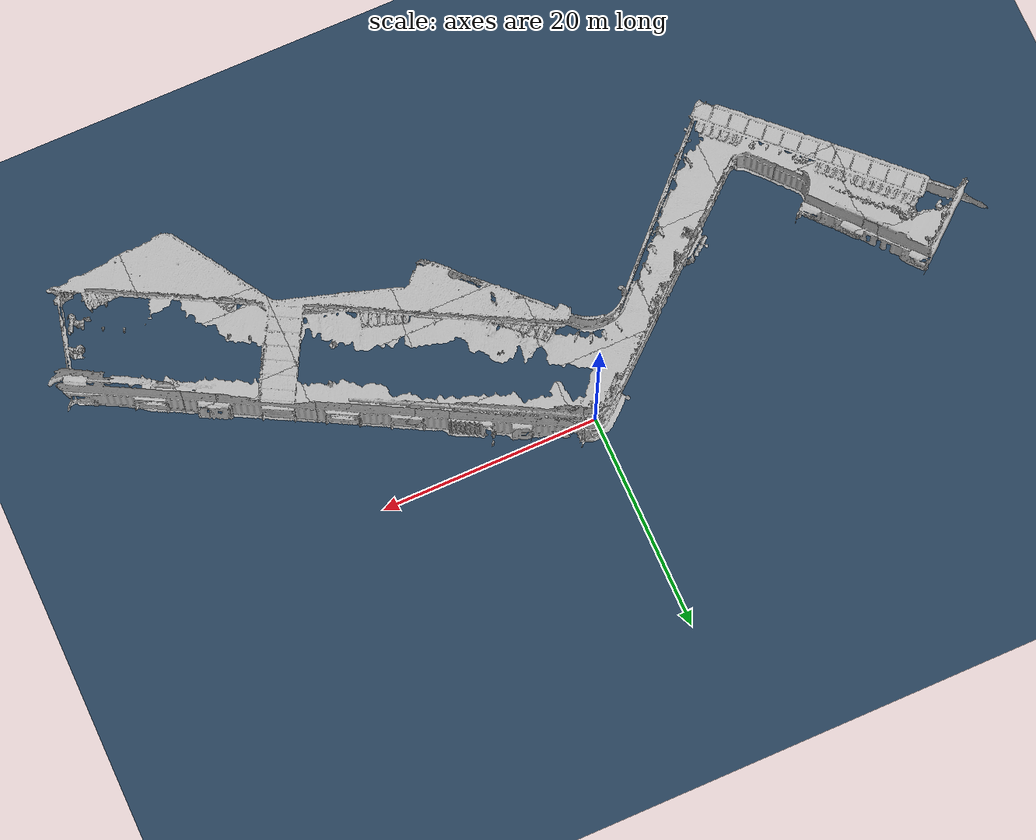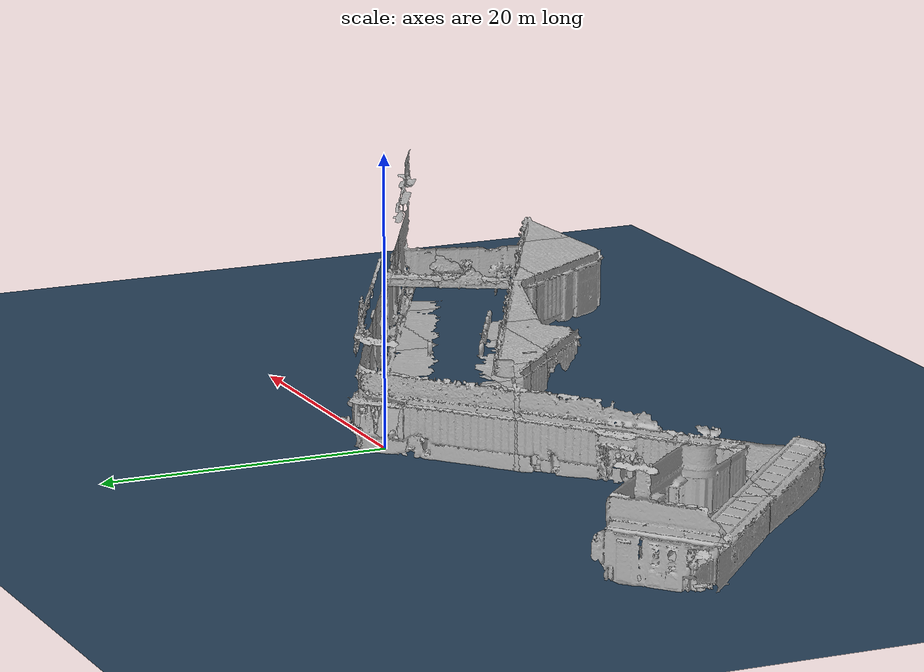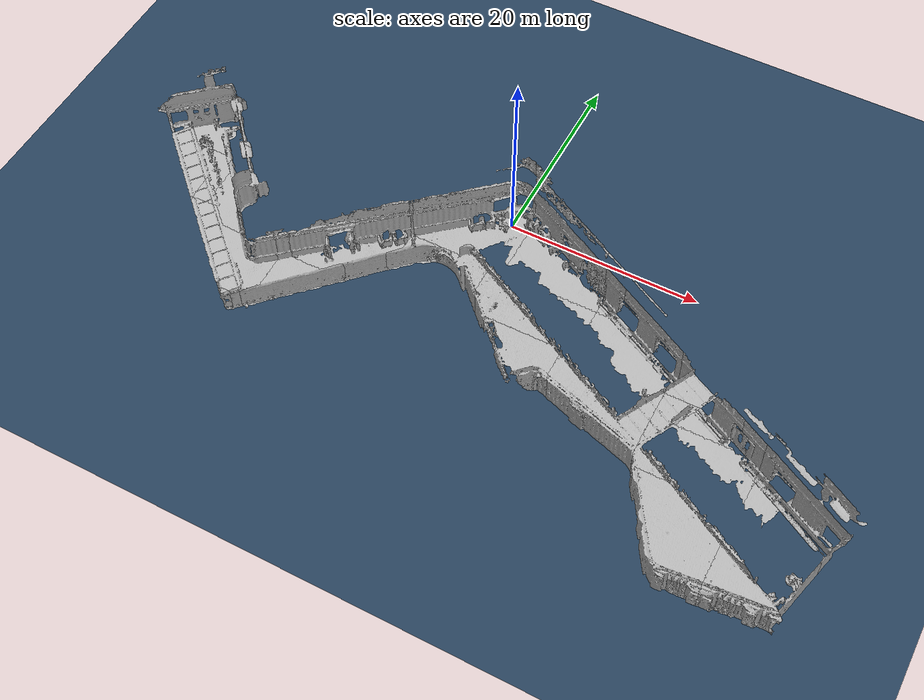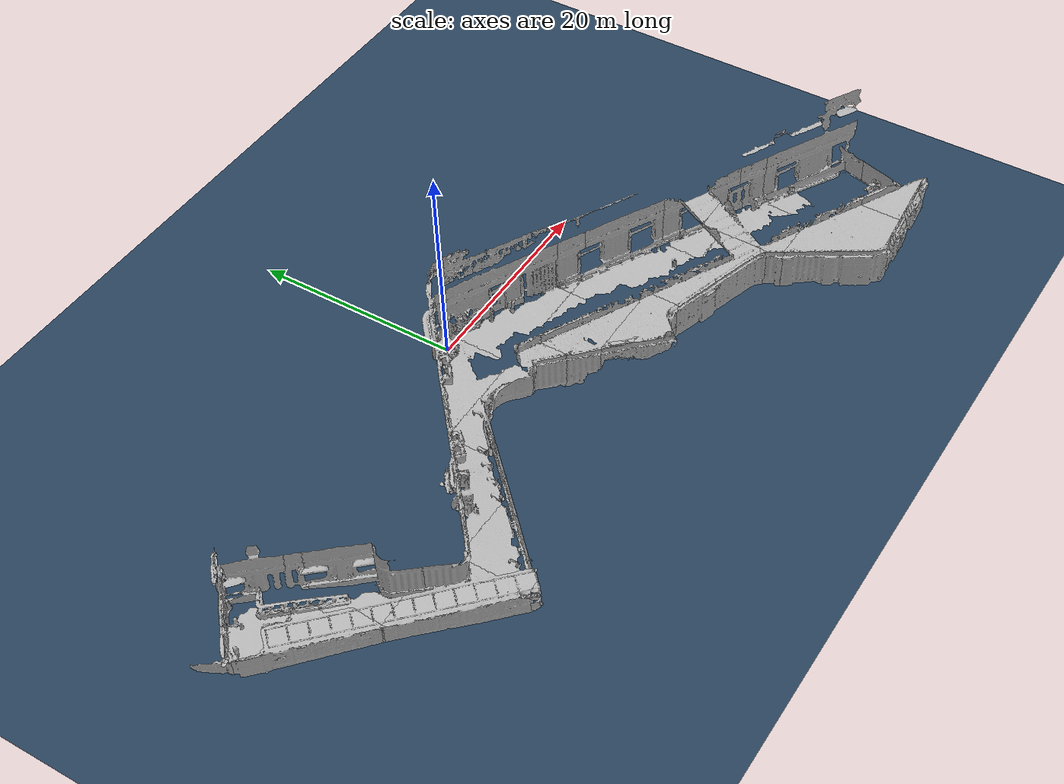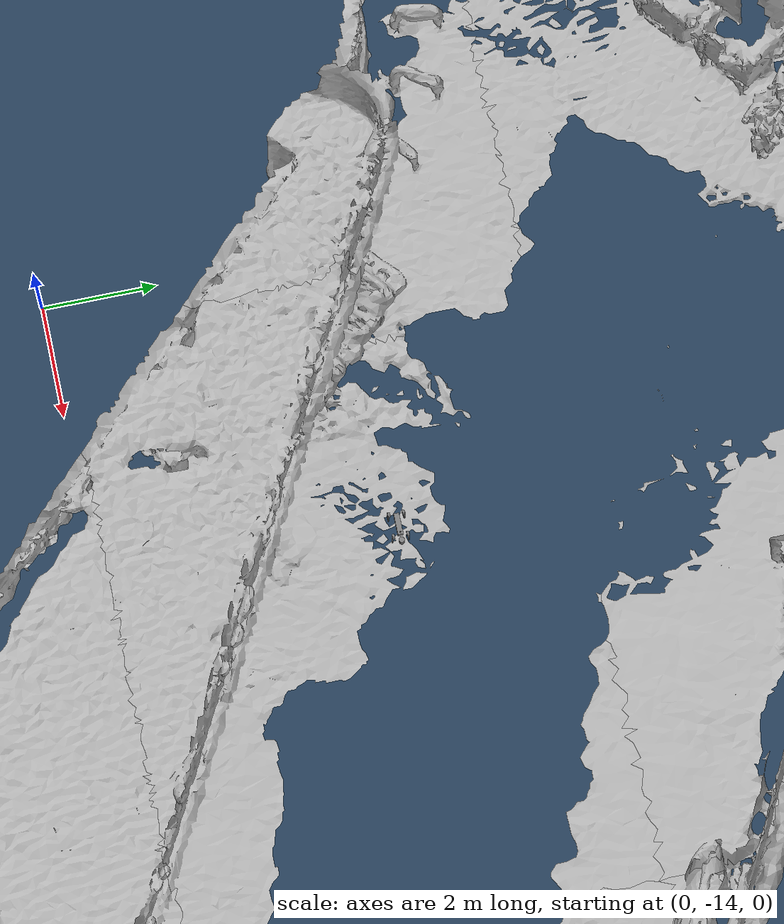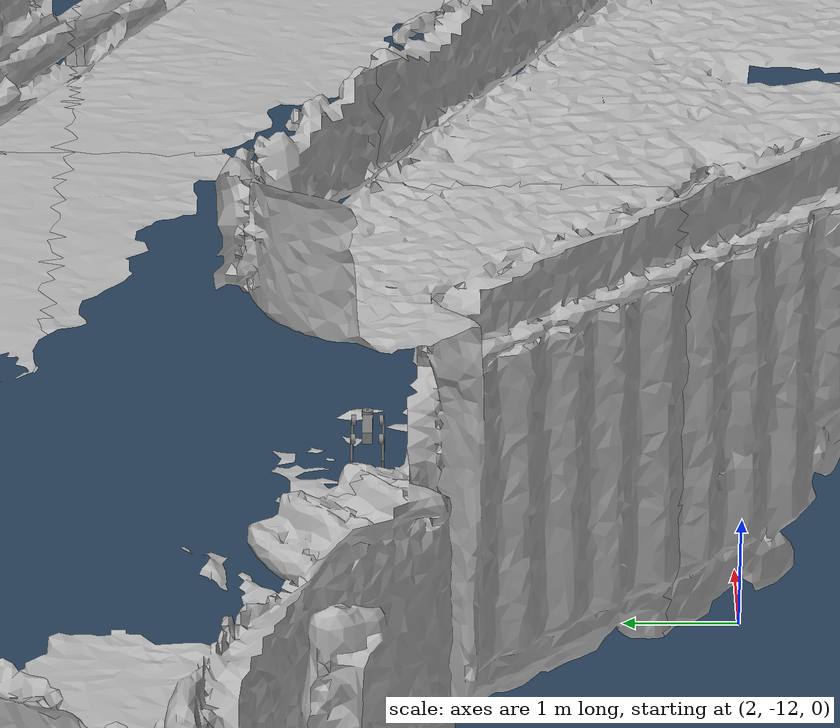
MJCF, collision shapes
<mujoco model="slam_ops2_go2">
  <compiler angle="radian" meshdir="assets" autolimits="true"/>

  <option timestep="0.002" gravity="0 0 -9.81" integrator="implicitfast"
          cone="elliptic" impratio="100"/>

  <statistic center="6 0 0.5" extent="8"/>

  <visual>
    <headlight diffuse="0.6 0.6 0.6" ambient="0.3 0.3 0.3" specular="0 0 0"/>
    <rgba haze="0.15 0.25 0.35 1"/>
    <global azimuth="-130" elevation="-20" offwidth="1920" offheight="1080"/>
    <quality shadowsize="4096" offsamples="8"/>
    <map shadowscale="0.5" shadowclip="1"/>
  </visual>

  <default>
    <default class="go2">
      <geom friction="0.4" margin="0.001" condim="1"/>
      <joint axis="0 1 0" damping="0.1" armature="0.01" frictionloss="0.2"/>
      <motor ctrlrange="-23.7 23.7"/>
      <default class="abduction">
        <joint axis="1 0 0" range="-1.0472 1.0472"/>
      </default>
      <default class="hip">
        <default class="front_hip">
          <joint range="-1.5708 3.4907"/>
        </default>
        <default class="back_hip">
          <joint range="-0.5236 4.5379"/>
        </default>
      </default>
      <default class="knee">
        <joint range="-2.7227 -0.83776"/>
        <motor ctrlrange="-45.43 45.43"/>
      </default>
      <default class="visual">
        <geom type="mesh" contype="0" conaffinity="0" group="2"/>
      </default>
      <default class="collision">
        <geom group="3"/>
        <default class="foot">
          <geom size="0.022" pos="-0.002 0 -0.2264" priority="1" condim="6"
            friction="0.8 0.02 0.01"/>
        </default>
      </default>
    </default>
    <default class="world">
      <geom contype="1" conaffinity="1"/>
    </default>
  </default>

  <asset>
    <!-- Skybox -->
    <texture type="skybox" builtin="gradient" rgb1="0.3 0.5 0.7" rgb2="0 0 0"
             width="512" height="3072"/>

    <!-- Ground -->
    <texture type="2d" name="groundplane" builtin="checker" mark="edge"
             rgb1="0.2 0.3 0.4" rgb2="0.1 0.2 0.3" markrgb="0.8 0.8 0.8"
             width="300" height="300"/>
    <material name="groundplane" texture="groundplane" texuniform="true"
              texrepeat="5 5" reflectance="0.2"/>

    <!-- Robot materials -->
    <material name="metal" rgba=".9 .95 .95 1"/>
    <material name="black" rgba="0 0 0 1"/>
    <material name="white" rgba="1 1 1 1"/>
    <material name="gray" rgba="0.671705 0.692426 0.774270 1"/>

    <!-- Robot mesh assets (official Unitree OBJ) -->
    <mesh file="base_0.obj"/>
    <mesh file="base_1.obj"/>
    <mesh file="base_2.obj"/>
    <mesh file="base_3.obj"/>
    <mesh file="base_4.obj"/>
    <mesh file="hip_0.obj"/>
    <mesh file="hip_1.obj"/>
    <mesh file="thigh_0.obj"/>
    <mesh file="thigh_1.obj"/>
    <mesh file="thigh_mirror_0.obj"/>
    <mesh file="thigh_mirror_1.obj"/>
    <mesh file="calf_mirror_0.obj"/>
    <mesh file="calf_mirror_1.obj"/>
    <mesh file="calf.stl"/>
    <mesh file="calf_mirror.stl"/>
    <mesh file="foot.obj"/>
    <mesh file="wheel.stl"/>

    <!-- World materials -->
    <material name="wall_mat" rgba="0.7 0.7 0.75 1"/>
    <material name="divider_mat" rgba="0.8 0.7 0.6 1"/>
    <material name="green_mat" rgba="0.0 1.0 0.0 1" specular="0.3"/>
    <material name="obstacle_mat" rgba="0.6 0.5 0.4 1"/>
    <mesh name="tile_00_m" file="slam_ops2/tiles/tile_00.obj"/>
    <mesh name="tile_01_m" file="slam_ops2/tiles/tile_01.obj"/>
    <mesh name="tile_02_m" file="slam_ops2/tiles/tile_02.obj"/>
    <mesh name="tile_03_m" file="slam_ops2/tiles/tile_03.obj"/>
    <mesh name="tile_04_m" file="slam_ops2/tiles/tile_04.obj"/>
    <mesh name="tile_05_m" file="slam_ops2/tiles/tile_05.obj"/>
    <mesh name="tile_06_m" file="slam_ops2/tiles/tile_06.obj"/>
    <mesh name="tile_07_m" file="slam_ops2/tiles/tile_07.obj"/>
    <mesh name="tile_08_m" file="slam_ops2/tiles/tile_08.obj"/>
    <mesh name="tile_09_m" file="slam_ops2/tiles/tile_09.obj"/>
    <mesh name="tile_10_m" file="slam_ops2/tiles/tile_10.obj"/>
    <mesh name="tile_11_m" file="slam_ops2/tiles/tile_11.obj"/>
    <mesh name="tile_12_m" file="slam_ops2/tiles/tile_12.obj"/>
    <mesh name="tile_13_m" file="slam_ops2/tiles/tile_13.obj"/>
    <mesh name="tile_14_m" file="slam_ops2/tiles/tile_14.obj"/>
    <mesh name="tile_15_m" file="slam_ops2/tiles/tile_15.obj"/>
    <mesh name="tile_16_m" file="slam_ops2/tiles/tile_16.obj"/>
    <mesh name="tile_17_m" file="slam_ops2/tiles/tile_17.obj"/>
    <mesh name="tile_18_m" file="slam_ops2/tiles/tile_18.obj"/>
    <mesh name="tile_19_m" file="slam_ops2/tiles/tile_19.obj"/>
    <mesh name="tile_20_m" file="slam_ops2/tiles/tile_20.obj"/>
    <mesh name="tile_21_m" file="slam_ops2/tiles/tile_21.obj"/>
  </asset>

  <worldbody>
    <light pos="0 0 6" dir="0 0 -1" diffuse="0.7 0.7 0.7"/>

    <!-- Pseudo ground (just below SLAM ground level) -->
        <!-- Pseudo ground (class=world, matches demo1_go2 — collidable infinite plane) -->
    <geom name="floor" type="plane" size="50 50 0.1" material="groundplane" class="world" pos="0 0 0"/>

    <!-- SLAM mesh terrain -->
    <!-- SLAM mesh as 22 XY-tiled collidable geoms (convex hull per tile) -->
    <geom name="tile_00" type="mesh" mesh="tile_00_m" rgba="0.7 0.7 0.7 1" contype="1" conaffinity="1" condim="3" friction="0.8 0.005 0.0001"/>
    <geom name="tile_01" type="mesh" mesh="tile_01_m" rgba="0.7 0.7 0.7 1" contype="1" conaffinity="1" condim="3" friction="0.8 0.005 0.0001"/>
    <geom name="tile_02" type="mesh" mesh="tile_02_m" rgba="0.7 0.7 0.7 1" contype="1" conaffinity="1" condim="3" friction="0.8 0.005 0.0001"/>
    <geom name="tile_03" type="mesh" mesh="tile_03_m" rgba="0.7 0.7 0.7 1" contype="1" conaffinity="1" condim="3" friction="0.8 0.005 0.0001"/>
    <geom name="tile_04" type="mesh" mesh="tile_04_m" rgba="0.7 0.7 0.7 1" contype="1" conaffinity="1" condim="3" friction="0.8 0.005 0.0001"/>
    <geom name="tile_05" type="mesh" mesh="tile_05_m" rgba="0.7 0.7 0.7 1" contype="1" conaffinity="1" condim="3" friction="0.8 0.005 0.0001"/>
    <geom name="tile_06" type="mesh" mesh="tile_06_m" rgba="0.7 0.7 0.7 1" contype="1" conaffinity="1" condim="3" friction="0.8 0.005 0.0001"/>
    <geom name="tile_07" type="mesh" mesh="tile_07_m" rgba="0.7 0.7 0.7 1" contype="1" conaffinity="1" condim="3" friction="0.8 0.005 0.0001"/>
    <geom name="tile_08" type="mesh" mesh="tile_08_m" rgba="0.7 0.7 0.7 1" contype="1" conaffinity="1" condim="3" friction="0.8 0.005 0.0001"/>
    <geom name="tile_09" type="mesh" mesh="tile_09_m" rgba="0.7 0.7 0.7 1" contype="1" conaffinity="1" condim="3" friction="0.8 0.005 0.0001"/>
    <geom name="tile_10" type="mesh" mesh="tile_10_m" rgba="0.7 0.7 0.7 1" contype="1" conaffinity="1" condim="3" friction="0.8 0.005 0.0001"/>
    <geom name="tile_11" type="mesh" mesh="tile_11_m" rgba="0.7 0.7 0.7 1" contype="1" conaffinity="1" condim="3" friction="0.8 0.005 0.0001"/>
    <geom name="tile_12" type="mesh" mesh="tile_12_m" rgba="0.7 0.7 0.7 1" contype="1" conaffinity="1" condim="3" friction="0.8 0.005 0.0001"/>
    <geom name="tile_13" type="mesh" mesh="tile_13_m" rgba="0.7 0.7 0.7 1" contype="1" conaffinity="1" condim="3" friction="0.8 0.005 0.0001"/>
    <geom name="tile_14" type="mesh" mesh="tile_14_m" rgba="0.7 0.7 0.7 1" contype="1" conaffinity="1" condim="3" friction="0.8 0.005 0.0001"/>
    <geom name="tile_15" type="mesh" mesh="tile_15_m" rgba="0.7 0.7 0.7 1" contype="1" conaffinity="1" condim="3" friction="0.8 0.005 0.0001"/>
    <geom name="tile_16" type="mesh" mesh="tile_16_m" rgba="0.7 0.7 0.7 1" contype="1" conaffinity="1" condim="3" friction="0.8 0.005 0.0001"/>
    <geom name="tile_17" type="mesh" mesh="tile_17_m" rgba="0.7 0.7 0.7 1" contype="1" conaffinity="1" condim="3" friction="0.8 0.005 0.0001"/>
    <geom name="tile_18" type="mesh" mesh="tile_18_m" rgba="0.7 0.7 0.7 1" contype="1" conaffinity="1" condim="3" friction="0.8 0.005 0.0001"/>
    <geom name="tile_19" type="mesh" mesh="tile_19_m" rgba="0.7 0.7 0.7 1" contype="1" conaffinity="1" condim="3" friction="0.8 0.005 0.0001"/>
    <geom name="tile_20" type="mesh" mesh="tile_20_m" rgba="0.7 0.7 0.7 1" contype="1" conaffinity="1" condim="3" friction="0.8 0.005 0.0001"/>
    <geom name="tile_21" type="mesh" mesh="tile_21_m" rgba="0.7 0.7 0.7 1" contype="1" conaffinity="1" condim="3" friction="0.8 0.005 0.0001"/>

    <body name="base_link" pos="5.12 -8.76 0.32" childclass="go2">
      <inertial pos="0.021112 0 -0.005366" quat="-0.000543471 0.713435 -0.00173769 0.700719"
        mass="6.921" diaginertia="0.107027 0.0980771 0.0244531"/>
      <freejoint name="root"/>

      <!-- Base visual meshes (OBJ with materials) -->
      <geom mesh="base_0" material="black" class="visual"/>
      <geom mesh="base_1" material="black" class="visual"/>
      <geom mesh="base_2" material="black" class="visual"/>
      <geom mesh="base_3" material="white" class="visual"/>
      <geom mesh="base_4" material="gray" class="visual"/>
      <!-- Base collision -->
      <geom name="base_collision" size="0.1881 0.04675 0.057" type="box" class="collision"/>
      <geom name="head_upper_collision" size="0.05 0.045" pos="0.285 0 0.01" type="cylinder" class="collision"/>
      <geom name="head_lower_collision" size="0.047" pos="0.293 0 -0.06" class="collision"/>

      <!-- Body-frame site for pose sensors (avoids inertial-frame rotation) -->
      <site name="base_link_site" pos="0 0 0" size="0.01"/>

      <!-- IMU site -->
      <site name="imu" pos="-0.02557 0 0.04232" size="0.01"/>

      <!-- Livox MID-360 LiDAR site (matches URDF: base→imu→livox_mid360_base) -->
      <!-- pos = imu_pos + livox_offset = (-0.02557+0.1870, 0, 0.04232+0.0803) -->
      <!-- Mid-360 mount tilt: pitch 0.263591 rad (15.10°) + roll -0.036809 rad. Matches real-robot calibration (scripts/real/onboard_fastlio_noetic.sh:258, 2026-04-17). quat = ROS RPY (Rz*Ry*Rx). -->
      <site name="livox_mid360" pos="0.16143 0 0.12262" quat="0.991160 -0.018244 0.131392 0.002418" size="0.01"/>

      <camera name="front_camera" pos="0.30 0 -0.01"
              xyaxes="0 -1 0 0.0872 0 0.9962"
              fovy="80" resolution="1280 720" mode="fixed"/>

      <!-- ====== Front-Left leg ====== -->
      <body name="FL_hip" pos="0.1934 0.0465 0">
        <inertial pos="-0.0054 0.00194 -0.000105" quat="0.497014 0.499245 0.505462 0.498237"
          mass="0.678" diaginertia="0.00088403 0.000596003 0.000479967"/>
        <joint name="FL_hip_joint" class="abduction"/>
        <geom mesh="hip_0" material="metal" class="visual"/>
        <geom mesh="hip_1" material="gray" class="visual"/>
        <geom name="FL_hip_collision" size="0.046 0.02" pos="0 0.08 0" quat="1 1 0 0" type="cylinder" class="collision"/>
        <body name="FL_thigh" pos="0 0.0955 0">
          <inertial pos="-0.00374 -0.0223 -0.0327" quat="0.829533 0.0847635 -0.0200632 0.551623"
            mass="1.152" diaginertia="0.00594973 0.00584149 0.000878787"/>
          <joint name="FL_thigh_joint" class="front_hip"/>
          <geom mesh="thigh_0" material="metal" class="visual"/>
          <geom mesh="thigh_1" material="gray" class="visual"/>
          <geom name="FL_thigh_collision" size="0.1065 0.01225 0.017" pos="0 0 -0.1065" quat="0.707107 0 0.707107 0"
            type="box" class="collision"/>
          <body name="FL_calf" pos="0 0 -0.213">
            <inertial pos="0.00629595 -0.000622121 -0.141417"
              quat="0.710672 0.00154099 -0.00450087 0.703508"
              mass="0.241352" diaginertia="0.0014901 0.00146356 5.31397e-05"/>
            <joint name="FL_calf_joint" class="knee"/>
            <geom mesh="calf" material="gray" class="visual"/>
            <geom name="FL_calf_upper_collision" size="0.012 0.06" pos="0.008 0 -0.06" quat="0.994493 0 -0.104807 0"
              type="cylinder" class="collision"/>
            <geom name="FL_calf_lower_collision" size="0.011 0.0325" pos="0.02 0 -0.148" quat="0.999688 0 0.0249974 0"
              type="cylinder" class="collision"/>
            <body name="FL_foot" pos="0 0 -0.2264">
              <inertial pos="0 0 0" quat="1 0 0 0" mass="0.06" diaginertia="3e-5 3e-5 3e-5"/>
              <geom name="FL_foot_collision" type="sphere" size="0.022" pos="0 +0.040 0" class="collision" condim="6" priority="1" friction="0.8 0.02 0.01" rgba="0.15 0.15 0.15 1"/>
              <site name="FL_foot_site" pos="0 +0.040 0" size="0.01"/>
            </body>
          </body>
        </body>
      </body>

      <!-- ====== Front-Right leg ====== -->
      <body name="FR_hip" pos="0.1934 -0.0465 0">
        <inertial pos="-0.0054 -0.00194 -0.000105" quat="0.498237 0.505462 0.499245 0.497014"
          mass="0.678" diaginertia="0.00088403 0.000596003 0.000479967"/>
        <joint name="FR_hip_joint" class="abduction"/>
        <geom mesh="hip_0" material="metal" class="visual" quat="4.63268e-05 1 0 0"/>
        <geom mesh="hip_1" material="gray" class="visual" quat="4.63268e-05 1 0 0"/>
        <geom name="FR_hip_collision" size="0.046 0.02" pos="0 -0.08 0" quat="0.707107 0.707107 0 0" type="cylinder"
          class="collision"/>
        <body name="FR_thigh" pos="0 -0.0955 0">
          <inertial pos="-0.00374 0.0223 -0.0327" quat="0.551623 -0.0200632 0.0847635 0.829533"
            mass="1.152" diaginertia="0.00594973 0.00584149 0.000878787"/>
          <joint name="FR_thigh_joint" class="front_hip"/>
          <geom mesh="thigh_mirror_0" material="metal" class="visual"/>
          <geom mesh="thigh_mirror_1" material="gray" class="visual"/>
          <geom name="FR_thigh_collision" size="0.1065 0.01225 0.017" pos="0 0 -0.1065" quat="0.707107 0 0.707107 0"
            type="box" class="collision"/>
          <body name="FR_calf" pos="0 0 -0.213">
            <inertial pos="0.00629595 0.000622121 -0.141417"
              quat="0.703508 -0.00450087 0.00154099 0.710672"
              mass="0.241352" diaginertia="0.0014901 0.00146356 5.31397e-05"/>
            <joint name="FR_calf_joint" class="knee"/>
            <geom mesh="calf_mirror" material="gray" class="visual"/>
            <geom name="FR_calf_upper_collision" size="0.013 0.06" pos="0.01 0 -0.06" quat="0.995004 0 -0.0998334 0"
              type="cylinder" class="collision"/>
            <geom name="FR_calf_lower_collision" size="0.011 0.0325" pos="0.02 0 -0.148" quat="0.999688 0 0.0249974 0"
              type="cylinder" class="collision"/>
            <body name="FR_foot" pos="0 0 -0.2264">
              <inertial pos="0 0 0" quat="1 0 0 0" mass="0.06" diaginertia="3e-5 3e-5 3e-5"/>
              <geom name="FR_foot_collision" type="sphere" size="0.022" pos="0 -0.040 0" class="collision" condim="6" priority="1" friction="0.8 0.02 0.01" rgba="0.15 0.15 0.15 1"/>
              <site name="FR_foot_site" pos="0 -0.040 0" size="0.01"/>
            </body>
          </body>
        </body>
      </body>

      <!-- ====== Rear-Left leg ====== -->
      <body name="RL_hip" pos="-0.1934 0.0465 0">
        <inertial pos="0.0054 0.00194 -0.000105" quat="0.505462 0.498237 0.497014 0.499245"
          mass="0.678" diaginertia="0.00088403 0.000596003 0.000479967"/>
        <joint name="RL_hip_joint" class="abduction"/>
        <geom mesh="hip_0" material="metal" class="visual" quat="4.63268e-05 0 1 0"/>
        <geom mesh="hip_1" material="gray" class="visual" quat="4.63268e-05 0 1 0"/>
        <geom name="RL_hip_collision" size="0.046 0.02" pos="0 0.08 0" quat="0.707107 0.707107 0 0" type="cylinder"
          class="collision"/>
        <body name="RL_thigh" pos="0 0.0955 0">
          <inertial pos="-0.00374 -0.0223 -0.0327" quat="0.829533 0.0847635 -0.0200632 0.551623"
            mass="1.152" diaginertia="0.00594973 0.00584149 0.000878787"/>
          <joint name="RL_thigh_joint" class="back_hip"/>
          <geom mesh="thigh_0" material="metal" class="visual"/>
          <geom mesh="thigh_1" material="gray" class="visual"/>
          <geom name="RL_thigh_collision" size="0.1065 0.01225 0.017" pos="0 0 -0.1065" quat="0.707107 0 0.707107 0"
            type="box" class="collision"/>
          <body name="RL_calf" pos="0 0 -0.213">
            <inertial pos="0.00629595 -0.000622121 -0.141417"
              quat="0.710672 0.00154099 -0.00450087 0.703508"
              mass="0.241352" diaginertia="0.0014901 0.00146356 5.31397e-05"/>
            <joint name="RL_calf_joint" class="knee"/>
            <geom mesh="calf" material="gray" class="visual"/>
            <geom name="RL_calf_upper_collision" size="0.013 0.06" pos="0.01 0 -0.06" quat="0.995004 0 -0.0998334 0"
              type="cylinder" class="collision"/>
            <geom name="RL_calf_lower_collision" size="0.011 0.0325" pos="0.02 0 -0.148" quat="0.999688 0 0.0249974 0"
              type="cylinder" class="collision"/>
            <body name="RL_foot" pos="0 0 -0.2264">
              <inertial pos="0 0 0" quat="1 0 0 0" mass="0.06" diaginertia="3e-5 3e-5 3e-5"/>
              <geom name="RL_foot_collision" type="sphere" size="0.022" pos="0 +0.040 0" class="collision" condim="6" priority="1" friction="0.8 0.02 0.01" rgba="0.15 0.15 0.15 1"/>
              <site name="RL_foot_site" pos="0 +0.040 0" size="0.01"/>
            </body>
          </body>
        </body>
      </body>

      <!-- ====== Rear-Right leg ====== -->
      <body name="RR_hip" pos="-0.1934 -0.0465 0">
        <inertial pos="0.0054 -0.00194 -0.000105" quat="0.499245 0.497014 0.498237 0.505462"
          mass="0.678" diaginertia="0.00088403 0.000596003 0.000479967"/>
        <joint name="RR_hip_joint" class="abduction"/>
        <geom mesh="hip_0" material="metal" class="visual"
          quat="2.14617e-09 4.63268e-05 4.63268e-05 -1"/>
        <geom mesh="hip_1" material="gray" class="visual"
          quat="2.14617e-09 4.63268e-05 4.63268e-05 -1"/>
        <geom name="RR_hip_collision" size="0.046 0.02" pos="0 -0.08 0" quat="0.707107 0.707107 0 0" type="cylinder"
          class="collision"/>
        <body name="RR_thigh" pos="0 -0.0955 0">
          <inertial pos="-0.00374 0.0223 -0.0327" quat="0.551623 -0.0200632 0.0847635 0.829533"
            mass="1.152" diaginertia="0.00594973 0.00584149 0.000878787"/>
          <joint name="RR_thigh_joint" class="back_hip"/>
          <geom mesh="thigh_mirror_0" material="metal" class="visual"/>
          <geom mesh="thigh_mirror_1" material="gray" class="visual"/>
          <geom name="RR_thigh_collision" size="0.1065 0.01225 0.017" pos="0 0 -0.1065" quat="0.707107 0 0.707107 0"
            type="box" class="collision"/>
          <body name="RR_calf" pos="0 0 -0.213">
            <inertial pos="0.00629595 0.000622121 -0.141417"
              quat="0.703508 -0.00450087 0.00154099 0.710672"
              mass="0.241352" diaginertia="0.0014901 0.00146356 5.31397e-05"/>
            <joint name="RR_calf_joint" class="knee"/>
            <geom mesh="calf_mirror" material="gray" class="visual"/>
            <geom name="RR_calf_upper_collision" size="0.013 0.06" pos="0.01 0 -0.06" quat="0.995004 0 -0.0998334 0"
              type="cylinder" class="collision"/>
            <geom name="RR_calf_lower_collision" size="0.011 0.0325" pos="0.02 0 -0.148" quat="0.999688 0 0.0249974 0"
              type="cylinder" class="collision"/>
            <body name="RR_foot" pos="0 0 -0.2264">
              <inertial pos="0 0 0" quat="1 0 0 0" mass="0.06" diaginertia="3e-5 3e-5 3e-5"/>
              <geom name="RR_foot_collision" type="sphere" size="0.022" pos="0 -0.040 0" class="collision" condim="6" priority="1" friction="0.8 0.02 0.01" rgba="0.15 0.15 0.15 1"/>
              <site name="RR_foot_site" pos="0 -0.040 0" size="0.01"/>
            </body>
          </body>
        </body>
      </body>
    </body>
  </worldbody>

  <!-- Actuators: effort only (Go2 has no wheel joints) -->
  <actuator>
    <motor class="abduction" name="FL_hip" joint="FL_hip_joint"/>
    <motor class="front_hip" name="FL_thigh" joint="FL_thigh_joint"/>
    <motor class="knee" name="FL_calf" joint="FL_calf_joint"/>

    <motor class="abduction" name="FR_hip" joint="FR_hip_joint"/>
    <motor class="front_hip" name="FR_thigh" joint="FR_thigh_joint"/>
    <motor class="knee" name="FR_calf" joint="FR_calf_joint"/>

    <motor class="abduction" name="RL_hip" joint="RL_hip_joint"/>
    <motor class="back_hip" name="RL_thigh" joint="RL_thigh_joint"/>
    <motor class="knee" name="RL_calf" joint="RL_calf_joint"/>

    <motor class="abduction" name="RR_hip" joint="RR_hip_joint"/>
    <motor class="back_hip" name="RR_thigh" joint="RR_thigh_joint"/>
    <motor class="knee" name="RR_calf" joint="RR_calf_joint"/>
  </actuator>

  <!-- Sensors -->
  <sensor>
    <!-- IMU (accel + gyro only; framequat removed to avoid DFKI creating
         a bogus pose sensor for "imu" that reads garbage position data) -->
    <accelerometer name="imu_accel" site="imu"/>
    <gyro name="imu_gyro" site="imu"/>

    <!-- Foot contact (touch sensors) -->
    <touch name="FL_foot_contact" site="FL_foot_site"/>
    <touch name="FR_foot_contact" site="FR_foot_site"/>
    <touch name="RL_foot_contact" site="RL_foot_site"/>
    <touch name="RR_foot_contact" site="RR_foot_site"/>

    <!-- Base body state (ground truth) — use site to get body frame, not inertial frame -->
    <framepos name="base_pos" objtype="site" objname="base_link_site"/>
    <framequat name="base_quat" objtype="site" objname="base_link_site"/>
    <framelinvel name="base_linvel" objtype="site" objname="base_link_site"/>
    <frameangvel name="base_angvel" objtype="site" objname="base_link_site"/>
  </sensor>
  <keyframe>
    <key name="home" qpos="5.12 -8.76 0.32 1 0 0 0  0 0.9 -1.8  0 0.9 -1.8  0 0.9 -1.8  0 0.9 -1.8"/>
  </keyframe>

</mujoco>
